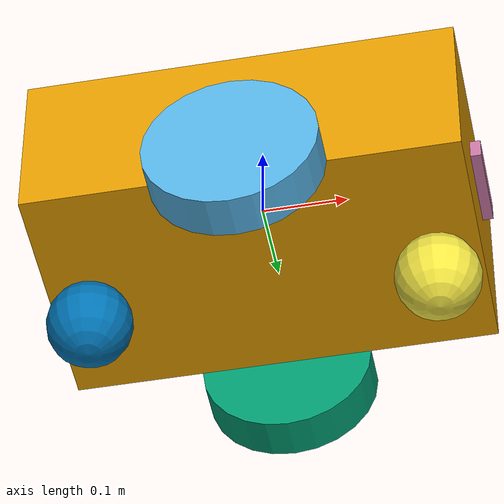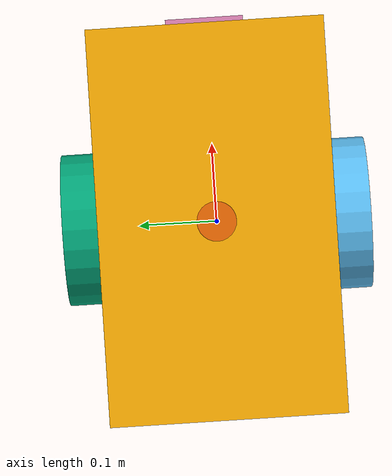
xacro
<?xml version="1.0"?>
<robot name="egitim_robotu" xmlns:xacro="http://ros.org/wiki/xacro">
  <xacro:include filename="$(find egitim_robotu_description)/urdf/egitim_robotu_taban.xacro"/>
  <xacro:include filename="$(find egitim_robotu_description)/urdf/inertia_tensors.xacro"/>
  <xacro:include filename="$(find egitim_robotu_description)/urdf/egitim_robotu_tekerlek.xacro"/>
  <xacro:include filename="$(find egitim_robotu_description)/urdf/egitim_robotu_diferansiyel.xacro"/>
  <xacro:include filename="$(find egitim_robotu_description)/urdf/egitim_robotu_lazer.xacro"/>
  <xacro:include filename="$(find egitim_robotu_description)/urdf/egitim_robotu_kamera.xacro"/>

  <xacro:egitim_robotu_taban />
  <xacro:egitim_robotu_tekerlek xyz_konum="-0.0 -0.175 -0.1" rpy_konum="0 0 0" yon="left"/>
  <xacro:egitim_robotu_tekerlek xyz_konum="-0.0 0.175 -0.1" rpy_konum="0 0 0" yon="right"/>
  <xacro:egitim_robotu_sarhos_tekerlek xyz_konum="0.2 0.0 -0.15" rpy_konum="0 0 0" yon="front"/>
  <xacro:egitim_robotu_sarhos_tekerlek xyz_konum="-0.2 0.0 -0.15" rpy_konum="0 0 0" yon="back"/>
  <xacro:egitim_robotu_diferansiyel_surus />
  <xacro:egitim_robotu_lazer xyz_konum="0.0 0.0 0.1125" rpy_konum="0 0 0"/>
  <xacro:egitim_robotu_kamera xyz_konum="0.25 0.0 0.0" rpy_konum="0 0 0.0"/>
</robot>

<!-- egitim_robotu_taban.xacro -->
<robot xmlns:xacro="http://ros.org/wiki/xacro">
  <xacro:macro name="egitim_robotu_taban" >
    <link name='base_footprint'>
      <origin xyz="0 0 0" rpy=" 0 0 0"/>
      <collision>
        <origin xyz="0 0 0.0" rpy=" 0 0 0"/>
        <geometry>
	  <box size="0.5 0.3 0.2"/>
        </geometry>
      </collision>
      <visual>
        <origin xyz="0.0 0.0 0.0" rpy=" 0 0 0.0"/>
        <geometry>
	  <box size="0.5 0.3 0.2"/>
        </geometry>
      </visual>
      <xacro:box_inertial x="0.5" y="0.3"  z="0.2" mass="10.0" />
    </link>
    <gazebo reference="base_footprint">
      <material value="Gazebo/Green"/>
    </gazebo>
  </xacro:macro>
</robot>

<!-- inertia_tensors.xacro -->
<robot xmlns:xacro="http://ros.org/wiki/xacro">
  <property name="M_PI" value="3.1415926535897931" />

  <!-- see https://secure.wikimedia.org/wikipedia/en/wiki/List_of_moment_of_inertia_tensors -->

  <!-- #################### versions without origin #################### -->
  <xacro:macro name="sphere_inertial" params="radius mass">
    <inertial>
      <mass value="${mass}" />
      <origin xyz="0 0 0" />
      <inertia ixx="${0.4 * mass * radius * radius}" ixy="0.0" ixz="0.0"
        iyy="${0.4 * mass * radius * radius}" iyz="0.0"
        izz="${0.4 * mass * radius * radius}" />
    </inertial>
  </xacro:macro>

  <xacro:macro name="cylinder_inertial" params="radius length mass">
    <inertial>
      <mass value="${mass}" />
      <origin xyz="0 0 0" />
      <inertia ixx="${0.0833333 * mass * (3 * radius * radius + length * length)}" ixy="0.0" ixz="0.0"
        iyy="${0.0833333 * mass * (3 * radius * radius + length * length)}" iyz="0.0"
        izz="${0.5 * mass * radius * radius}" />
    </inertial>
  </xacro:macro>

  <xacro:macro name="box_inertial" params="x y z mass">
    <inertial>
      <mass value="${mass}" />
      <origin xyz="0 0 0" />
      <inertia ixx="${0.0833333 * mass * (y*y + z*z)}" ixy="0.0" ixz="0.0"
        iyy="${0.0833333 * mass * (x*x + z*z)}" iyz="0.0"
        izz="${0.0833333 * mass * (x*x + y*y)}" />
    </inertial>
  </xacro:macro>

  <!-- #################### versions with origin #################### -->
  <xacro:macro name="sphere_inertial_with_origin" params="radius mass *origin">
    <inertial>
      <mass value="${mass}" />
      <insert_block name="origin" />
      <inertia ixx="${0.4 * mass * radius * radius}" ixy="0.0" ixz="0.0"
        iyy="${0.4 * mass * radius * radius}" iyz="0.0"
        izz="${0.4 * mass * radius * radius}" />
    </inertial>
  </xacro:macro>

  <xacro:macro name="cylinder_inertial_with_origin" params="radius length mass *origin">
    <inertial>
      <mass value="${mass}" />
      <insert_block name="origin" />
      <inertia ixx="${0.0833333 * mass * (3 * radius * radius + length * length)}" ixy="0.0" ixz="0.0"
        iyy="${0.0833333 * mass * (3 * radius * radius + length * length)}" iyz="0.0"
        izz="${0.5 * mass * radius * radius}" />
    </inertial>
  </xacro:macro>

  <xacro:macro name="box_inertial_with_origin" params="x y z mass *origin">
    <inertial>
      <mass value="${mass}" />
      <insert_block name="origin" />
      <inertia ixx="${0.0833333 * mass * (y*y + z*z)}" ixy="0.0" ixz="0.0"
        iyy="${0.0833333 * mass * (x*x + z*z)}" iyz="0.0"
        izz="${0.0833333 * mass * (x*x + y*y)}" />
    </inertial>
  </xacro:macro>

</robot>

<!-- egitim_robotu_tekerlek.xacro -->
<robot xmlns:xacro="http://ros.org/wiki/xacro">
  <xacro:macro name="egitim_robotu_tekerlek" params="xyz_konum rpy_konum yon">
    <link name='wheel_${yon}_link'>
      <collision>
        <origin xyz="0 0 0" rpy="0 1.570796 1.570796"/>
        <geometry>
          <cylinder radius="0.10" length="0.05"/>
        </geometry>
      </collision>
      <visual>
        <origin xyz="0 0 0" rpy="0 1.570796 1.570796"/>
          <geometry>
            <cylinder radius="0.10" length="0.05"/>
	  </geometry>
      </visual>
      <xacro:cylinder_inertial radius="0.10" length="0.05" mass="0.5"/>
    </link>

    <joint name="wheel_${yon}_base" type="continuous">
      <origin xyz="${xyz_konum}" rpy="${rpy_konum}"/>
      <parent link="base_footprint"/>
      <child link="wheel_${yon}_link"/>
      <axis xyz="0 1 0"/>
    </joint>

    <gazebo reference="wheel_${yon}_link">
      <material value="Gazebo/Gray"/>
    </gazebo>
  </xacro:macro>

  <xacro:macro name="egitim_robotu_sarhos_tekerlek" params="xyz_konum rpy_konum yon">
    <link name='caster_wheel_${yon}_link'>
      <collision>
        <origin xyz="0 0 0" rpy="0 0 0"/>
	  <geometry>
            <sphere radius="0.05"/>
	  </geometry>
       </collision>
       <visual>
         <origin xyz="0 0 0" rpy="0 0 0"/>
	   <geometry>
             <sphere radius="0.05"/>
	   </geometry>
       </visual>
       <xacro:sphere_inertial radius="0.05" mass="0.05"/>
     </link>

     <joint name="caster_${yon}_to_base" type="continuous">
       <origin xyz="${xyz_konum}" rpy="${rpy_konum}"/>
       <parent link="base_footprint"/>
       <child link="caster_wheel_${yon}_link"/>
       <axis xyz=" 1 1 1"/>
     </joint>
   </xacro:macro>
 </robot>

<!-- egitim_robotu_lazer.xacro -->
<robot xmlns:xacro="http://ros.org/wiki/xacro">
  <xacro:macro name="egitim_robotu_lazer" params="xyz_konum rpy_konum">
  <link name='laser_link'>
    <collision>
      <origin xyz="0 0 0" rpy="0 0 0"/>
      <geometry>
        <cylinder radius="0.025" length="0.025"/>
      </geometry>
    </collision>
    <visual>
      <origin xyz="0 0 0" rpy="0 0 0"/>
      <geometry>
        <cylinder radius="0.025" length="0.025"/>
      </geometry>
    </visual>
    <xacro:cylinder_inertial radius="0.025" length="0.025" mass="0.2"/>
  </link>

  <joint name="base_to_laser" type="fixed">
    <origin xyz="${xyz_konum}" rpy="${rpy_konum}"/>
    <parent link="base_footprint"/>
    <child link="laser_link"/>
    <axis xyz="0 1 0"/>
  </joint>

  <gazebo reference="laser_link">
    <material value="Gazebo/Blue"/>
    <sensor type="gpu_ray" name="head_hokuyo_sensor">
      <pose>0 0 0 0 0 0</pose>
      <visualize>false</visualize>
      <update_rate>40</update_rate>
      <ray>
        <scan>
          <horizontal>
            <samples>720</samples>
            <resolution>1</resolution>
            <min_angle>-3.14</min_angle>
            <max_angle>3.14</max_angle>
          </horizontal>
        </scan>
        <range>
          <min>0.10</min>
          <max>30.0</max>
          <resolution>0.01</resolution>
        </range>
        <noise>
          <type>gaussian</type>
          <mean>0.0</mean>
          <stddev>0.01</stddev>
        </noise>
      </ray>
      <plugin name="gazebo_ros_head_hokuyo_controller" filename="libgazebo_ros_gpu_laser.so">
        <topicName>scan</topicName>
        <frameName>laser_link</frameName>
      </plugin>
    </sensor>
  </gazebo>
  </xacro:macro>
 </robot>

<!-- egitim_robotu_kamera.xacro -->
<robot xmlns:xacro="http://ros.org/wiki/xacro">
  <xacro:macro name="egitim_robotu_kamera" params="xyz_konum rpy_konum">
    <link name='camera_link'>
      <collision>
        <origin xyz="0 0 0" rpy="0 0 0"/>
        <geometry>
	  <box size="0.025 0.10 0.025"/>
        </geometry>
      </collision>
      <visual>
        <origin xyz="0 0 0" rpy="0 0 0"/>
        <geometry>
          <box size="0.025 0.10 0.025"/>
        </geometry>
      </visual>
      <xacro:box_inertial x="0.10" y="0.025"  z="0.025" mass="0.1" />
    </link>

    <joint name="base_to_camera" type="fixed">
      <origin xyz="${xyz_konum}" rpy="${rpy_konum}"/>
      <parent link="base_footprint"/>
      <child link="camera_link"/>
      <axis xyz="0 1 0"/>
    </joint>

    <gazebo reference="camera_link">
      <material value="Gazebo/Black"/>
      <sensor name="camera_link_camera" type="depth">
        <update_rate>20</update_rate>
        <camera>
          <horizontal_fov>1.047198</horizontal_fov>
          <image>
            <width>640</width>
            <height>480</height>
            <format>R8G8B8</format>
          </image>
          <clip>
            <near>0.05</near>
            <far>3</far>
          </clip>
        </camera>
        <plugin name="camera_link_controller" filename="libgazebo_ros_openni_kinect.so">
          <baseline>0.2</baseline>
          <alwaysOn>true</alwaysOn>
          <updateRate>1.0</updateRate>
          <cameraName>camera_link</cameraName>
          <imageTopicName>camera_link/color/image_raw</imageTopicName>
          <cameraInfoTopicName>camera_link/color/camera_info</cameraInfoTopicName>
          <depthImageTopicName>camera_link/depth/image_raw</depthImageTopicName>
          <depthImageInfoTopicName>camera_link/depth/camera_info</depthImageInfoTopicName>
          <pointCloudTopicName>camera_link/depth/points</pointCloudTopicName>
          <frameName>camera_link</frameName>
          <pointCloudCutoff>0.5</pointCloudCutoff>
          <pointCloudCutoffMax>3.0</pointCloudCutoffMax>
          <distortionK1>0.00000001</distortionK1>
          <distortionK2>0.00000001</distortionK2>
          <distortionK3>0.00000001</distortionK3>
          <distortionT1>0.00000001</distortionT1>
          <distortionT2>0.00000001</distortionT2>
          <CxPrime>0</CxPrime>
          <Cx>0</Cx>
          <Cy>0</Cy>
          <focalLength>0</focalLength>
          <hackBaseline>0</hackBaseline>
        </plugin>
      </sensor>
    </gazebo>
  </xacro:macro>
 </robot>
